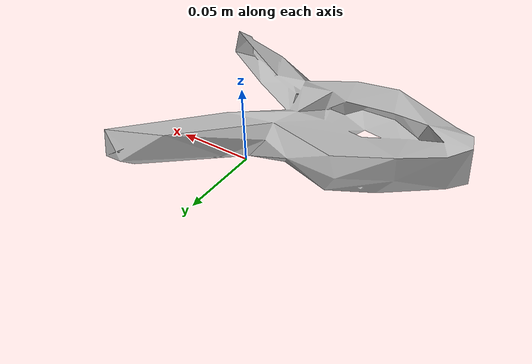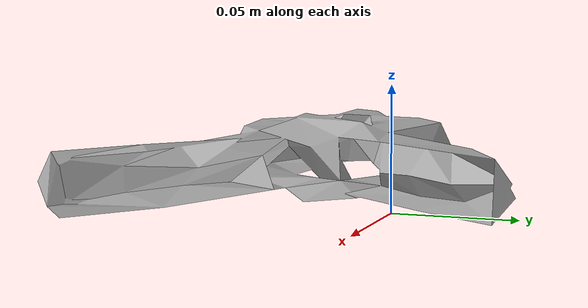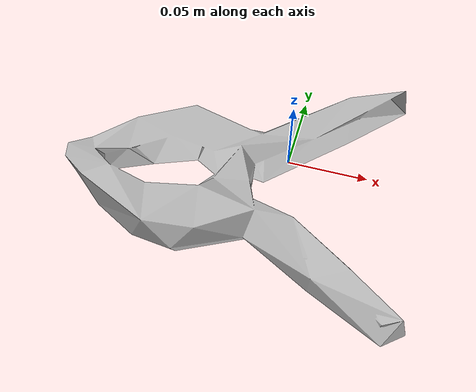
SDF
<?xml version='1.0'?>
<sdf version="1.4">
  <model name="052_extra_large_clamp">
    <static>false</static>
    <link name="link">
      <inertial>
        <pose>-0.0045653275606138185 -0.033159788230498255 0.017781205432699686 1.5106305059242258 -1.5556769352871345 -1.3925150779580033</pose>
        <mass>0.06009144490991992</mass>
        <inertia>
          <ixx>0.00022422436428951343</ixx>
          <ixy>1.6010369776408444e-21</ixy>
          <ixz>-6.144792063790383e-22</ixz>
          <iyy>0.00015494968200725328</iyy>
          <iyz>8.619800347092049e-21</iyz>
          <izz>7.760004927687943e-05</izz>
        </inertia>
      </inertial>
      <collision name="collision">
        <geometry>
          <mesh>
            <!-- Use a downsampled mesh for collisions -->
            <uri>model:///052_extra_large_clamp/052_extra_large_clamp_250_collision.stl</uri>
	        </mesh>
        </geometry>
        <surface>
      </surface>
      </collision>
      <visual name="visual">
        <geometry>
          <mesh>
            <uri>model:///052_extra_large_clamp/textured.obj</uri>
	        </mesh>
        </geometry>
        <material>
          <script>
            <uri>model:///052_extra_large_clamp/052_extra_large_clamp.material</uri>
            <name>052_extra_large_clamp</name>
          </script>
        </material>
      </visual>
    </link>
  </model>
</sdf>
